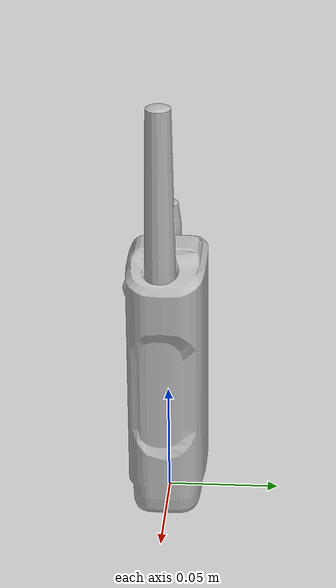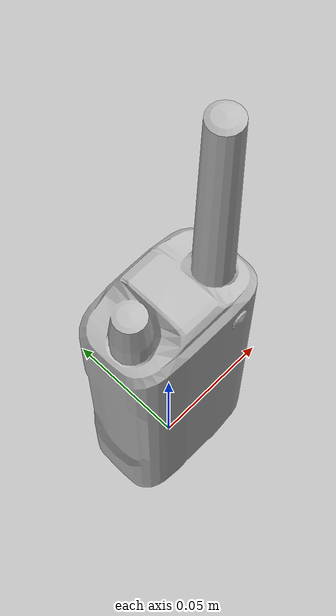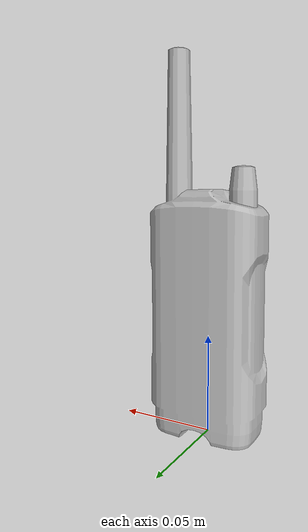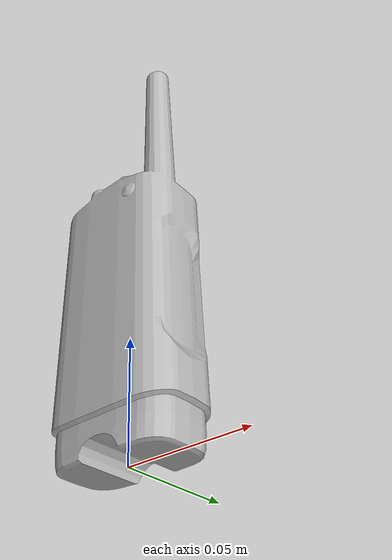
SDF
<?xml version='1.0' ?>
<sdf version='1.6'>
  <model name='Radio'>
    <static>true</static>
    <link name='link'>
      <collision name='collision'>
        <geometry>
          <mesh>
            <uri>model://Radio/meshes/Radio.dae</uri>
          </mesh>
        </geometry>
      </collision>
      <visual name='visual'>
        <geometry>
          <mesh>
            <uri>model://Radio/meshes/Radio.dae</uri>
          </mesh>
        </geometry>
        <plugin name='light_source_visualize' filename='libLightVisualPlugin.so'>
          <light>
            <id>light_source</id>
            <visualize>false</visualize>
          </light>
        </plugin>
      </visual>
      <light name='light_source' type='point'>
        <pose>0.0137 -0.02 0.109 0 0 0</pose>
        <attenuation>
          <range>2.0</range>
          <constant>0.2</constant>
          <linear>0.10</linear>
          <quadratic>0.1</quadratic>
        </attenuation>
        <diffuse>1 0 0 1</diffuse>
        <specular>1 0 0 1</specular>
      </light>
    </link>

    <plugin name='light_control' filename='libFlashLightPlugin.so'>
      <light>
        <id>link/light_source</id>
        <duration>1.0</duration>
        <interval>3.0</interval>
        <color>1 0 0</color>
      </light>
    </plugin>

  </model>
</sdf>
